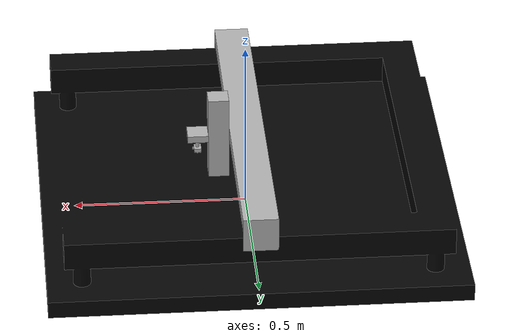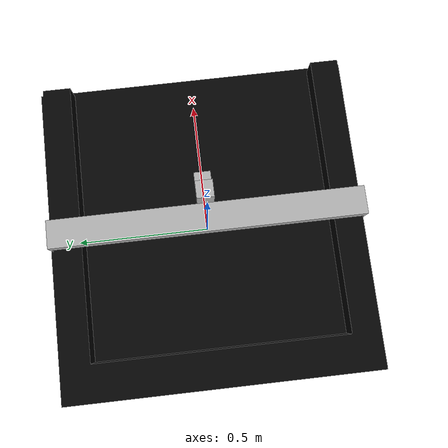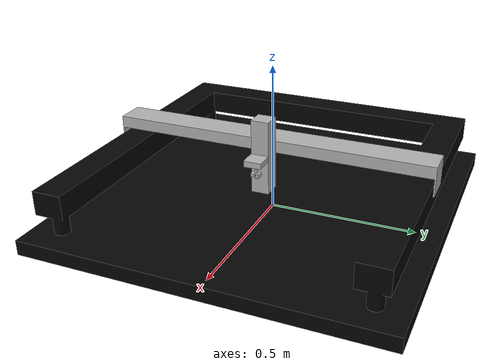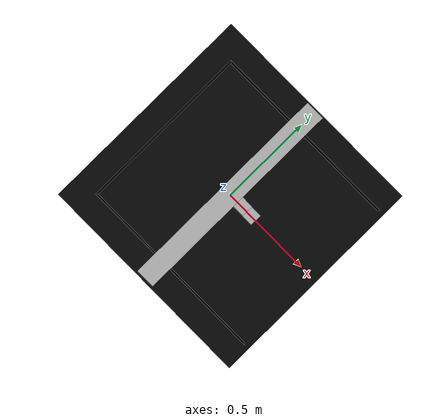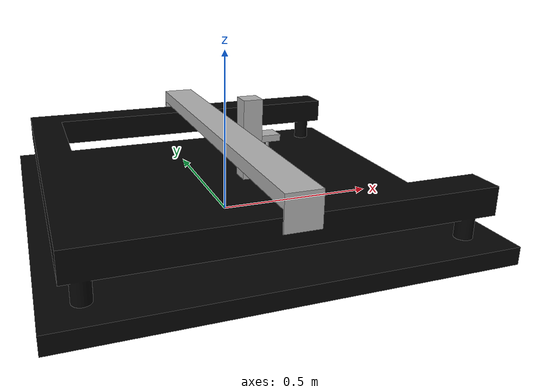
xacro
<?xml version="1.0" ?>
<robot name="robot_system" xmlns:xacro="http://www.ros.org/wiki/xacro">

<xacro:include filename="$(find robot_system_description)/urdf/materials.xacro" />

<link name="world"/>
<joint name="fixed_to_world" type="fixed">
  <parent link="world"/>
  <child link="base_link"/>
</joint>

<link name="base_link">
  <inertial>
    <origin xyz="-0.036965141881106514 -9.562908641042548e-17 0.06102885117512971" rpy="0 0 0"/>
    <mass value="764.5040316870028"/>
    <inertia ixx="110.516115" iyy="99.10948" izz="203.495293" ixy="0.0" iyz="0.0" ixz="2.938225"/>
  </inertial>
  <visual>
    <origin xyz="0 0 0" rpy="0 0 0"/>
    <geometry>
      <mesh filename="package://robot_system_description/meshes/base_link.stl" scale="0.001 0.001 0.001"/>
    </geometry>
    <material name="black"/>
  </visual>
  <collision>
    <origin xyz="0 0 0" rpy="0 0 0"/>
    <geometry>
      <mesh filename="package://robot_system_description/meshes/base_link.stl" scale="0.001 0.001 0.001"/>
    </geometry>
  </collision>
  <collision name="base_work_surface_collision">
    <origin xyz="0 0 0.0495" rpy="0 0 0"/>
    <geometry>
      <box size="1.2 1.2 0.001"/>
    </geometry>
  </collision>
</link>

<link name="y_link_1">
  <inertial>
    <origin xyz="0.030000000000000013 0.0 0.0" rpy="0 0 0"/>
    <mass value="0.18"/>
    <inertia ixx="0.000991490446" iyy="0.000991490446" izz="0.000108" ixy="0.0" iyz="0.0" ixz="0.0"/>
  </inertial>
  <visual>
    <origin xyz="-0.05 -0.0 -0.225" rpy="0 0 0"/>
    <geometry>
      <mesh filename="package://robot_system_description/meshes/y_link_1.stl" scale="0.001 0.001 0.001"/>
    </geometry>
    <material name="silver"/>
  </visual>
  <collision>
    <origin xyz="-0.05 -0.0 -0.225" rpy="0 0 0"/>
    <geometry>
      <mesh filename="package://robot_system_description/meshes/y_link_1.stl" scale="0.001 0.001 0.001"/>
    </geometry>
  </collision>
</link>

<link name="z_link_1">
  <inertial>
    <origin xyz="0.030000000000000013 -3.947459643111668e-18 0.0" rpy="0 0 0"/>
    <mass value="0.09"/>
    <inertia ixx="0.000029936306" iyy="0.000029936306" izz="0.000053980892" ixy="0.0" iyz="0.0" ixz="0.0"/>
  </inertial>
  <visual>
    <origin xyz="-0.11 -0.0 -0.225" rpy="0 0 0"/>
    <geometry>
      <mesh filename="package://robot_system_description/meshes/z_link_1.stl" scale="0.001 0.001 0.001"/>
    </geometry>
    <material name="silver"/>
  </visual>
  <collision>
    <origin xyz="-0.11 -0.0 -0.225" rpy="0 0 0"/>
    <geometry>
      <mesh filename="package://robot_system_description/meshes/z_link_1.stl" scale="0.001 0.001 0.001"/>
    </geometry>
  </collision>
</link>

<link name="theta_link_1">
  <inertial>
    <origin xyz="0.0001732869481511634 -1.9700445167097035e-18 -0.0303093012095626" rpy="0 0 0"/>
    <mass value="0.05"/>
    <inertia ixx="0.000008476712" iyy="0.000007063927" izz="0.000004238356" ixy="0.0" iyz="0.0" ixz="0.0"/>
  </inertial>
  <visual>
    <origin xyz="-0.14 0.0 -0.215" rpy="0 0 0"/>
    <geometry>
      <mesh filename="package://robot_system_description/meshes/theta_link_1.stl" scale="0.001 0.001 0.001"/>
    </geometry>
    <material name="silver"/>
  </visual>
  <collision name="picker_contact_collision">
    <origin xyz="0 0 -0.045" rpy="0 0 0"/>
    <geometry>
      <cylinder radius="0.0035" length="0.010"/>
    </geometry>
  </collision>
</link>

<link name="x_link_1">
  <inertial>
    <origin xyz="8.91814442532711e-18 0.55 0.07933333333333334" rpy="0 0 0"/>
    <mass value="0.45"/>
    <inertia ixx="0.04749504459" iyy="0.000450802548" izz="0.04779425478" ixy="0.0" iyz="0.0" ixz="0.0"/>
  </inertial>
  <visual>
    <origin xyz="-0.0 0.55 -0.165" rpy="0 0 0"/>
    <geometry>
      <mesh filename="package://robot_system_description/meshes/x_link_1.stl" scale="0.001 0.001 0.001"/>
    </geometry>
    <material name="silver"/>
  </visual>
  <collision>
    <origin xyz="-0.0 0.55 -0.165" rpy="0 0 0"/>
    <geometry>
      <mesh filename="package://robot_system_description/meshes/x_link_1.stl" scale="0.001 0.001 0.001"/>
    </geometry>
  </collision>
</link>

<joint name="joint_y" type="prismatic">
  <origin xyz="0.05 0.55 0.06" rpy="0 0 0"/>
  <parent link="x_link_1"/>
  <child link="y_link_1"/>
  <axis xyz="0.0 -1.0 0.0"/>
  <limit upper="0.405" lower="-0.405" effort="8" velocity="0.2"/>
  <dynamics damping="3.0" friction="0.0"/>
</joint>

<joint name="joint_z" type="prismatic">
  <origin xyz="0.06 0.0 0.0" rpy="0 0 0"/>
  <parent link="y_link_1"/>
  <child link="z_link_1"/>
  <axis xyz="0.0 0.0 1.0"/>
  <limit upper="0.115" lower="-0.115" effort="6" velocity="0.25"/>
  <dynamics damping="0.8" friction="0.0"/>
</joint>

<joint name="joint_theta" type="continuous">
  <origin xyz="0.03 -0.0 -0.01" rpy="0 0 0"/>
  <parent link="z_link_1"/>
  <child link="theta_link_1"/>
  <axis xyz="-0.0 0.0 -1.0"/>
  <limit effort="0.2" velocity="3.14"/>
  <dynamics damping="0.0002" friction="0.0"/>
</joint>

<joint name="joint_x" type="prismatic">
  <origin xyz="0.0 -0.55 0.165" rpy="0 0 0"/>
  <parent link="base_link"/>
  <child link="x_link_1"/>
  <axis xyz="1.0 0.0 0.0"/>
  <limit upper="0.4" lower="-0.4" effort="12" velocity="0.2"/>
  <dynamics damping="6.0" friction="0.0"/>
</joint>

<gazebo reference="theta_link_1">
  <selfCollide>true</selfCollide>
  <kp>1000000.0</kp>
  <kd>100.0</kd>
  <maxVel>0.01</maxVel>
  <minDepth>0.0</minDepth>
  <sensor name="picker_contact_sensor" type="contact">
    <topic>/model/robot_system/picker/contact</topic>
    <contact>
      <collision>theta_link_1_fixed_joint_lump__picker_contact_collision_collision</collision>
    </contact>
    <always_on>1</always_on>
    <update_rate>50</update_rate>
  </sensor>
</gazebo>

<gazebo reference="theta_link_1">
  <sensor type="camera" name="macro_camera">
    <update_rate>2.0</update_rate>
    <topic>vision/macro_camera/image_raw</topic>
    <camera>
      <horizontal_fov>1.047</horizontal_fov>
      <image>
        <width>1920</width>
        <height>1080</height>
      </image>
      <clip>
        <near>0.01</near>
        <far>100</far>
      </clip>
    </camera>
    <always_on>0</always_on>
    <visualize>false</visualize>
    <pose>0.0125 0 -0.038 0 1.5708 1.5708</pose>
  </sensor>
</gazebo>

<gazebo reference="theta_link_1">
  <sensor type="camera" name="micro_camera_1">
    <update_rate>2.0</update_rate>
    <topic>vision/micro_camera_1/image_raw</topic>
    <camera>
      <horizontal_fov>0.11</horizontal_fov>
      <image>
        <width>1920</width>
        <height>1080</height>
      </image>
      <clip>
        <near>0.005</near>
        <far>100</far>
      </clip>
    </camera>
    <always_on>0</always_on>
    <visualize>false</visualize>
    <pose> 0.006  0.006 -0.0435 0 1.5708 1.5708</pose>
  </sensor>
</gazebo>

<gazebo reference="theta_link_1">
  <sensor type="camera" name="micro_camera_2">
    <update_rate>2.0</update_rate>
    <topic>vision/micro_camera_2/image_raw</topic>
    <camera>
      <horizontal_fov>0.11</horizontal_fov>
      <image>
        <width>1920</width>
        <height>1080</height>
      </image>
      <clip>
        <near>0.005</near>
        <far>100</far>
      </clip>
    </camera>
    <always_on>0</always_on>
    <visualize>false</visualize>
    <pose> -0.006  0.006 -0.0435 0 1.5708 1.5708</pose>
  </sensor>
</gazebo>

<gazebo reference="theta_link_1">
  <sensor type="camera" name="micro_camera_3">
    <update_rate>2.0</update_rate>
    <topic>vision/micro_camera_3/image_raw</topic>
    <camera>
      <horizontal_fov>0.11</horizontal_fov>
      <image>
        <width>1920</width>
        <height>1080</height>
      </image>
      <clip>
        <near>0.005</near>
        <far>100</far>
      </clip>
    </camera>
    <always_on>0</always_on>
    <visualize>false</visualize>
    <pose> -0.006  -0.006 -0.0435 0 1.5708 1.5708</pose>
  </sensor>
</gazebo>

<gazebo reference="theta_link_1">
  <sensor type="camera" name="micro_camera_4">
    <update_rate>2.0</update_rate>
    <topic>vision/micro_camera_4/image_raw</topic>
    <camera>
      <horizontal_fov>0.11</horizontal_fov>
      <image>
        <width>1920</width>
        <height>1080</height>
      </image>
      <clip>
        <near>0.005</near>
        <far>100</far>
      </clip>
    </camera>
    <always_on>0</always_on>
    <visualize>false</visualize>
    <pose> 0.006  -0.006 -0.0435 0 1.5708 1.5708</pose>
  </sensor>
</gazebo>

<gazebo>
  <plugin filename="libignition-gazebo-joint-state-publisher-system.so"
          name="ignition::gazebo::systems::JointStatePublisher">
    <topic>/model/robot_system/joint_state</topic>
    <joint_name>joint_x</joint_name>
    <joint_name>joint_y</joint_name>
    <joint_name>joint_z</joint_name>
    <joint_name>joint_theta</joint_name>
  </plugin>

  <plugin filename="libignition-gazebo-joint-position-controller-system.so"
          name="ignition::gazebo::systems::JointPositionController">
    <joint_name>joint_x</joint_name>
    <topic>/model/robot_system/joint/joint_x/cmd_pos</topic>
    <p_gain>220.0</p_gain>
    <i_gain>0.0</i_gain>
    <d_gain>20.0</d_gain>
    <cmd_max>12.0</cmd_max>
    <cmd_min>-12.0</cmd_min>
  </plugin>

  <plugin filename="libignition-gazebo-joint-position-controller-system.so"
          name="ignition::gazebo::systems::JointPositionController">
    <joint_name>joint_y</joint_name>
    <topic>/model/robot_system/joint/joint_y/cmd_pos</topic>
    <p_gain>140.0</p_gain>
    <i_gain>0.0</i_gain>
    <d_gain>10.5</d_gain>
    <cmd_max>8.0</cmd_max>
    <cmd_min>-8.0</cmd_min>
  </plugin>

  <plugin filename="libignition-gazebo-joint-position-controller-system.so"
          name="ignition::gazebo::systems::JointPositionController">
    <joint_name>joint_z</joint_name>
    <topic>/model/robot_system/joint/joint_z/cmd_pos</topic>
    <p_gain>2600.0</p_gain>
    <i_gain>1200.0</i_gain>
    <d_gain>40.0</d_gain>
    <i_max>3.0</i_max>
    <i_min>-3.0</i_min>
    <cmd_max>6.0</cmd_max>
    <cmd_min>-6.0</cmd_min>
  </plugin>

</gazebo>

<gazebo>
  <plugin filename="libignition-gazebo-joint-position-controller-system.so"
          name="ignition::gazebo::systems::JointPositionController">
    <joint_name>joint_theta</joint_name>
    <topic>/model/robot_system/joint/joint_theta/cmd_pos</topic>
    <p_gain>0.05</p_gain>
    <i_gain>0.0</i_gain>
    <d_gain>0.0008</d_gain>
    <cmd_max>0.2</cmd_max>
    <cmd_min>-0.2</cmd_min>
  </plugin>
</gazebo>

</robot>

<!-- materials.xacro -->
<robot name="robot_system" xmlns:xacro="http://www.ros.org/wiki/xacro" >

<material name="silver">
  <color rgba="0.700 0.700 0.700 1.000"/>
</material>

<material name="black">
  <color rgba="0.020 0.020 0.020 1.000"/>
</material>

</robot>
